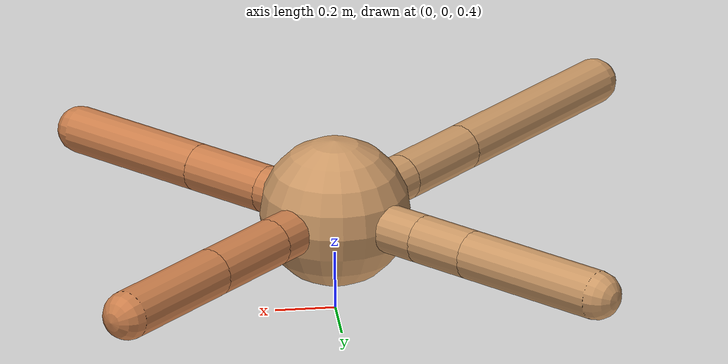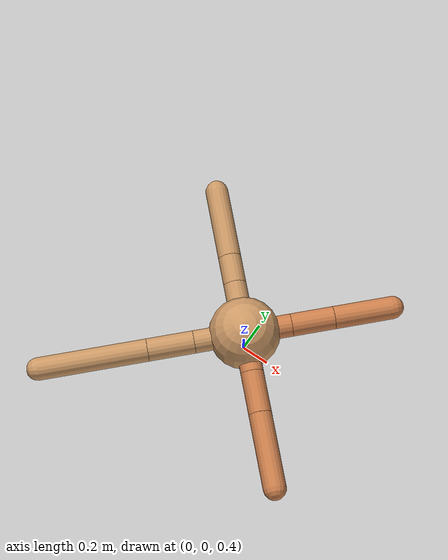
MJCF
<mujoco model="ant">
  <compiler angle="degree" coordinate="local" inertiafromgeom="true" />
  <option integrator="RK4" timestep="0.01" />
  <custom>
    <numeric data="0.0 0.0 0.55 1.0 0.0 0.0 0.0 0.0 1.0 0.0 -1.0 0.0 -1.0 0.0 1.0" name="init_qpos" />
  </custom>
  <default>
    <joint armature="1" damping="1" limited="true" />
    <geom conaffinity="0" condim="3" density="5.0" friction="1.5 0.1 0.1" margin="0.01" rgba="0.8 0.6 0.4 1" />
  </default>
  <worldbody>
    <body name="torso" pos="0 0 0.75">
      <geom name="torso_geom" pos="0 0 0" size="0.25" type="sphere" />

      <body name="front_left_leg" pos="0 0 0">
        <geom fromto="0.0 0.0 0.0 0.23289636230615557 0.23289636230615557 0.0" name="aux_1_geom" size="0.08" type="capsule" rgba=".8 .5 .3 1" />
        <body name="aux_1" pos="0.23289636230615557 0.23289636230615557 0.0">
          <joint axis="0 0 1" name="hip_1" pos="0.0 0.0 0.0" range="-40 40" type="hinge" />
          <geom fromto="0.0 0.0 0.0 0.2132410275616898 0.2132410275616898 0.0" name="left_leg_geom" size="0.08" type="capsule" rgba=".8 .5 .3 1" />
          <body pos="0.2132410275616898 0.2132410275616898 0.0" name="front_left_foot">
            <joint axis="-1 1 0" name="ankle_1" pos="0.0 0.0 0.0" range="30 100" type="hinge" />
            <geom fromto="0.0 0.0 0.0 0.2921711250460327 0.2921711250460327 0.0" name="left_ankle_geom" size="0.08" type="capsule" rgba=".8 .5 .3 1" />
          </body>
        </body>
      </body>
      <body name="front_right_leg" pos="0 0 0">
        <geom fromto="0.0 0.0 0.0 -0.25694485312193627 0.25694485312193627 0.0" name="aux_2_geom" size="0.08" type="capsule" />
        <body name="aux_2" pos="-0.25694485312193627 0.25694485312193627 0.0">
          <joint axis="0 0 1" name="hip_2" pos="0.0 0.0 0.0" range="-40 40" type="hinge" />
          <geom fromto="0.0 0.0 0.0 -0.1419500119011414 0.1419500119011414 0.0" name="right_leg_geom" size="0.08" type="capsule" />
          <body pos="-0.1419500119011414 0.1419500119011414 0.0" name="front_right_foot">
            <joint axis="1 1 0" name="ankle_2" pos="0.0 0.0 0.0" range="-100 -30" type="hinge" />
            <geom fromto="0.0 0.0 0.0 -0.3548379623491221 0.3548379623491221 0.0" name="right_ankle_geom" size="0.08" type="capsule" />
          </body>
        </body>
      </body>
      <body name="left_back_leg" pos="0 0 0">
        <geom fromto="0.0 0.0 0.0 -0.2502819229815129 -0.2502819229815129 0.0" name="aux_3_geom" size="0.08" type="capsule" />
        <body name="aux_3" pos="-0.2502819229815129 -0.2502819229815129 0.0">
          <joint axis="0 0 1" name="hip_3" pos="0.0 0.0 0.0" range="-40 40" type="hinge" />
          <geom fromto="0.0 0.0 0.0 -0.23058529360019744 -0.23058529360019744 0.0" name="back_leg_geom" size="0.08" type="capsule" />
          <body pos="-0.23058529360019744 -0.23058529360019744 0.0" name="left_back_foot">
            <joint axis="-1 1 0" name="ankle_3" pos="0.0 0.0 0.0" range="-100 -30" type="hinge" />
            <geom fromto="0.0 0.0 0.0 -0.539261798220216 -0.539261798220216 0.0" name="third_ankle_geom" size="0.08" type="capsule" />
          </body>
        </body>
      </body>
      <body name="right_back_leg" pos="0 0 0">
        <geom fromto="0.0 0.0 0.0 0.204356081542737 -0.204356081542737 0.0" name="aux_4_geom" size="0.08" type="capsule" rgba=".8 .5 .3 1" />
        <body name="aux_4" pos="0.204356081542737 -0.204356081542737 0.0">
          <joint axis="0 0 1" name="hip_4" pos="0.0 0.0 0.0" range="-40 40" type="hinge" />
          <geom fromto="0.0 0.0 0.0 0.20936313980419632 -0.20936313980419632 0.0" name="rightback_leg_geom" size="0.08" type="capsule" rgba=".8 .5 .3 1" />
          <body pos="0.20936313980419632 -0.20936313980419632 0.0" name="right_back_foot">
            <joint axis="1 1 0" name="ankle_4" pos="0.0 0.0 0.0" range="30 100" type="hinge" />
            <geom fromto="0.0 0.0 0.0 0.37330527456076035 -0.37330527456076035 0.0" name="fourth_ankle_geom" size="0.08" type="capsule" rgba=".8 .5 .3 1" />
          </body>
        </body>
      </body>
    </body>
  </worldbody>
  <actuator>
    <motor ctrllimited="true" ctrlrange="-1.0 1.0" joint="hip_4" gear="150" />
    <motor ctrllimited="true" ctrlrange="-1.0 1.0" joint="ankle_4" gear="150" />
    <motor ctrllimited="true" ctrlrange="-1.0 1.0" joint="hip_1" gear="150" />
    <motor ctrllimited="true" ctrlrange="-1.0 1.0" joint="ankle_1" gear="150" />
    <motor ctrllimited="true" ctrlrange="-1.0 1.0" joint="hip_2" gear="150" />
    <motor ctrllimited="true" ctrlrange="-1.0 1.0" joint="ankle_2" gear="150" />
    <motor ctrllimited="true" ctrlrange="-1.0 1.0" joint="hip_3" gear="150" />
    <motor ctrllimited="true" ctrlrange="-1.0 1.0" joint="ankle_3" gear="150" />
  </actuator>
</mujoco>
